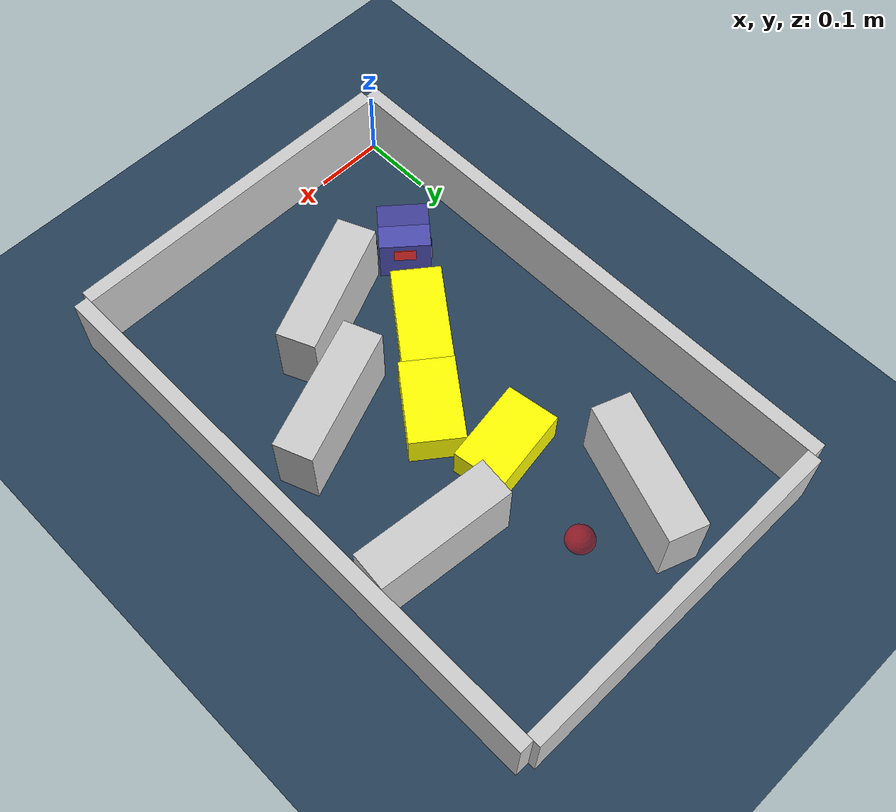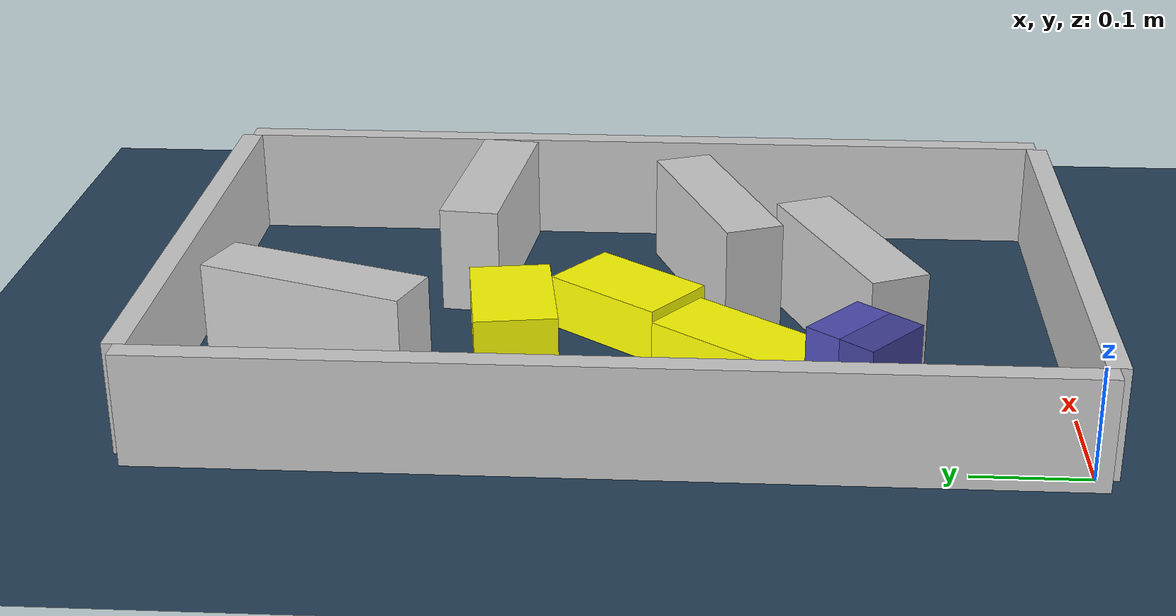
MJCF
<?xml version='1.0' encoding='utf-8'?>
<mujoco model="real_buildable">
  <compiler angle="degree" />
  <option timestep="0.002" integrator="implicitfast" iterations="100" cone="elliptic" />
  <default>
    <geom density="1" />
  </default>
  <asset>
    <texture builtin="gradient" height="3072" rgb1="0.3 0.5 0.7" rgb2="0 0 0" type="skybox" width="512" />
    <texture builtin="checker" height="300" mark="edge" markrgb="0.8 0.8 0.8" name="groundplane" rgb1="0.2 0.3 0.4" rgb2="0.1 0.2 0.3" type="2d" width="300" />
    <material name="groundplane" reflectance="0.2" texrepeat="5 5" texture="groundplane" texuniform="true" />
  </asset>
  <worldbody>
    <light dir="0 0 -1" directional="true" pos="0 0 1.5" />
    <geom name="floor" type="plane" condim="4" friction="0.5 0.005 0.001" material="groundplane" size="0 0 0.05" />
    <body name="walls">
      <geom name="wall_boundary_left" type="box" condim="4" friction="1.0 0.005 0.0001" rgba="0.8 0.8 0.8 1" pos="-0.010000 0.387500 0.050000" euler="0 0 0.000000" size="0.010000 0.397500 0.050000" />
      <geom name="wall_boundary_right" type="box" condim="4" friction="1.0 0.005 0.0001" rgba="0.8 0.8 0.8 1" pos="0.500000 0.387500 0.050000" euler="0 0 0.000000" size="0.010000 0.397500 0.050000" />
      <geom name="wall_boundary_bottom" type="box" condim="4" friction="1.0 0.005 0.0001" rgba="0.8 0.8 0.8 1" pos="0.245000 -0.010000 0.050000" euler="0 0 0.000000" size="0.245000 0.010000 0.050000" />
      <geom name="wall_boundary_top" type="box" condim="4" friction="1.0 0.005 0.0001" rgba="0.8 0.8 0.8 1" pos="0.245000 0.785000 0.050000" euler="0 0 0.000000" size="0.245000 0.010000 0.050000" />
      <geom name="wall_inner_1" type="box" condim="4" friction="1.0 0.005 0.0001" rgba="0.8 0.8 0.8 1" pos="0.357146 0.307641 0.050000" euler="0 0 21.353707" size="0.097500 0.027500 0.050000" />
      <geom name="wall_inner_2" type="box" condim="4" friction="1.0 0.005 0.0001" rgba="0.8 0.8 0.8 1" pos="0.251814 0.186849 0.050000" euler="0 0 23.867859" size="0.097500 0.027500 0.050000" />
      <geom name="wall_inner_3" type="box" condim="4" friction="1.0 0.005 0.0001" rgba="0.8 0.8 0.8 1" pos="0.390000 0.528000 0.050000" euler="0 0 174.400000" size="0.097500 0.027500 0.050000" />
      <geom name="wall_inner_4" type="box" condim="4" friction="1.0 0.005 0.0001" rgba="0.8 0.8 0.8 1" pos="0.152000 0.654000 0.050000" euler="0 0 70.200000" size="0.097500 0.027500 0.050000" />
    </body>
    <body name="car" pos="0.1088648590758564 0.18042842898026695 0.01" quat="0.90694010336452591 0 0 0.4212595980023992">
      <freejoint name="car_freejoint" />
      <inertial pos="0 0 0.0375" mass="0.35" diaginertia="0.000266 0.000266 0.000286" />
      <geom name="front_chassis_collision" type="box" pos="0.0175 0 0.0375" size="0.0175 0.035 0.0325" rgba="0.3 0.3 0.7 1" />
      <geom name="rear_chassis_collision" type="box" pos="-0.0175 0 0.0375" size="0.0175 0.035 0.0325" rgba="0.25 0.25 0.6 1" />
      <geom name="front_marker" type="box" pos="0.034 0 0.0505" size="0.002 0.015 0.01" rgba="1 0.2 0.2 1" contype="0" conaffinity="0" />
      <body name="rear_support_body" pos="-0.03 0 0.0025">
        <joint name="rear_caster_joint" type="ball" damping="0.0001" />
        <inertial pos="0 0 0" mass="0.025" diaginertia="0.000001 0.000001 0.000001" />
        <geom name="rear_support" type="sphere" pos="0 0 0" size="0.0025" friction="0 0 0" rgba="0.7 0.1 0.1 1" />
      </body>
      <body name="front_support_body" pos="0.03 0 0.0025">
        <joint name="front_caster_joint" type="ball" damping="0.0001" />
        <inertial pos="0 0 0" mass="0.025" diaginertia="0.000001 0.000001 0.000001" />
        <geom name="front_support" type="sphere" pos="0 0 0" size="0.0025" friction="0 0 0" rgba="0.1 0.7 0.1 1" />
      </body>
      <body name="left_wheel" pos="0 0.0375 0.015">
        <inertial pos="0 0 0" mass="0.05" diaginertia="0.000003 0.000006 0.000003" />
        <joint name="left_wheel_joint" type="hinge" axis="0 1 0" damping="0.01" armature="0.0001" />
        <geom name="left_wheel_collision" type="cylinder" size="0.015 0.0005" euler="90 0 0" rgba="0.1 0.1 0.1 1" />
      </body>
      <body name="right_wheel" pos="0 -0.0375 0.015">
        <inertial pos="0 0 0" mass="0.05" diaginertia="0.000003 0.000006 0.000003" />
        <joint name="right_wheel_joint" type="hinge" axis="0 1 0" damping="0.01" armature="0.0001" />
        <geom name="right_wheel_collision" type="cylinder" size="0.015 0.0005" euler="90 0 0" rgba="0.1 0.1 0.1 1" />
      </body>
    </body>
    <body name="obstacle_0_movable">
      <geom name="obstacle_0_movable" condim="4" pos="0.17256692592912881 0.28170566803570468 0.02" friction="1 0.005 0.0001" rgba="1 1 0 1" size="0.035000 0.075000 0.020000" type="box" mass="0.1" quat="0.31965080554350128 0 0 0.94753541491354865" />
      <joint type="free" />
    </body>
    <body name="obstacle_1_movable">
      <geom name="obstacle_1_movable" condim="4" pos="0.22611489117471911 0.49031010719350765 0.025000000000000001" friction="1 0.005 0.0001" rgba="1 1 0 1" size="0.037500 0.060000 0.025000" type="box" mass="0.1" quat="0.75916026994936781 0 0 -0.6509037444433724" />
      <joint type="free" />
    </body>
    <body name="obstacle_2_movable">
      <geom name="obstacle_2_movable" condim="4" pos="0.25656713263627473 0.3875340639725231 0.025000000000000001" friction="1 0.005 0.0001" rgba="1 1 0 1" size="0.037500 0.060000 0.025000" type="box" mass="0.1" quat="0.31828195986464919 0 0 0.94799609388684603" />
      <joint type="free" />
    </body>
    <site name="goal" type="sphere" pos="0.245000 0.640000 0.0" size="0.02" rgba="1 0 0 0.5" />
  </worldbody>
  <actuator>
    <velocity name="left_wheel_drive" joint="left_wheel_joint" ctrlrange="-25 25" kv="0.75" forcerange="-0.5 0.5" />
    <velocity name="right_wheel_drive" joint="right_wheel_joint" ctrlrange="-25 25" kv="0.75" forcerange="-0.5 0.5" />
  </actuator>
</mujoco>
